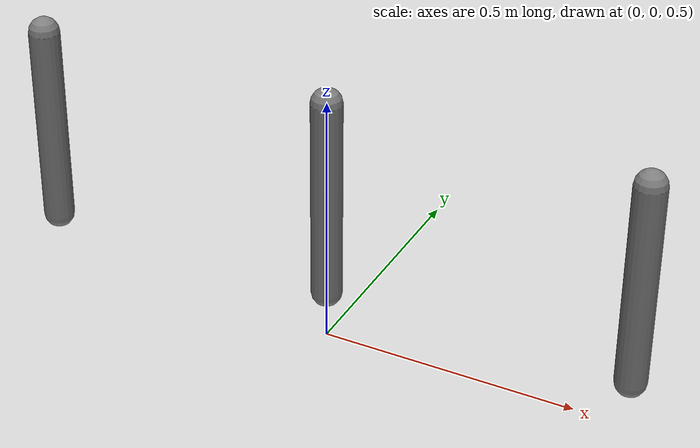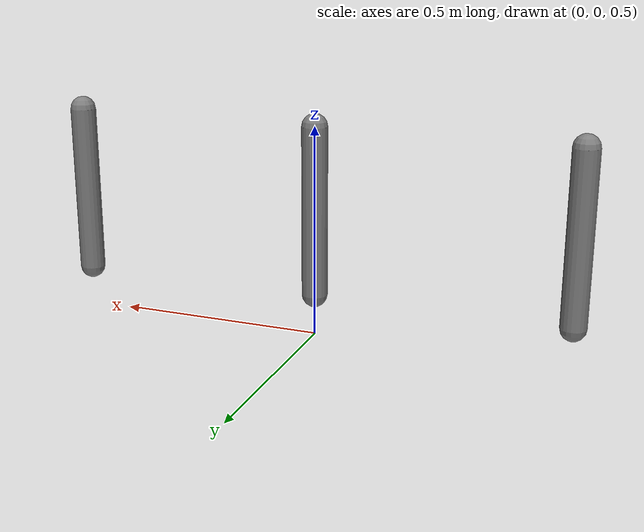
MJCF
<mujoco model="activation_filter">
  <compiler angle="radian"/>
  <option timestep="0.005" gravity="0 0 0"/>
  <default>
    <joint axis="0 1 0" damping=".1"/>
    <geom type="capsule" fromto="0 0 0 0 0 -.4" size=".03" mass="1" contype="0" conaffinity="0"/>
  </default>
  <worldbody>
    <body pos="-.6 0 1"><joint name="stateless_joint"/><geom/></body>
    <body pos="0 0 1"><joint name="filter_joint"/><geom/></body>
    <body pos=".6 0 1"><joint name="exact_joint"/><geom/></body>
  </worldbody>
  <actuator>
    <general name="stateless" joint="stateless_joint" gainprm="1"/>
    <general name="filter" joint="filter_joint" dyntype="filter" dynprm=".05" gainprm="1"/>
    <general name="filterexact" joint="exact_joint" dyntype="filterexact" dynprm=".05" gainprm="1"/>
  </actuator>
</mujoco>
